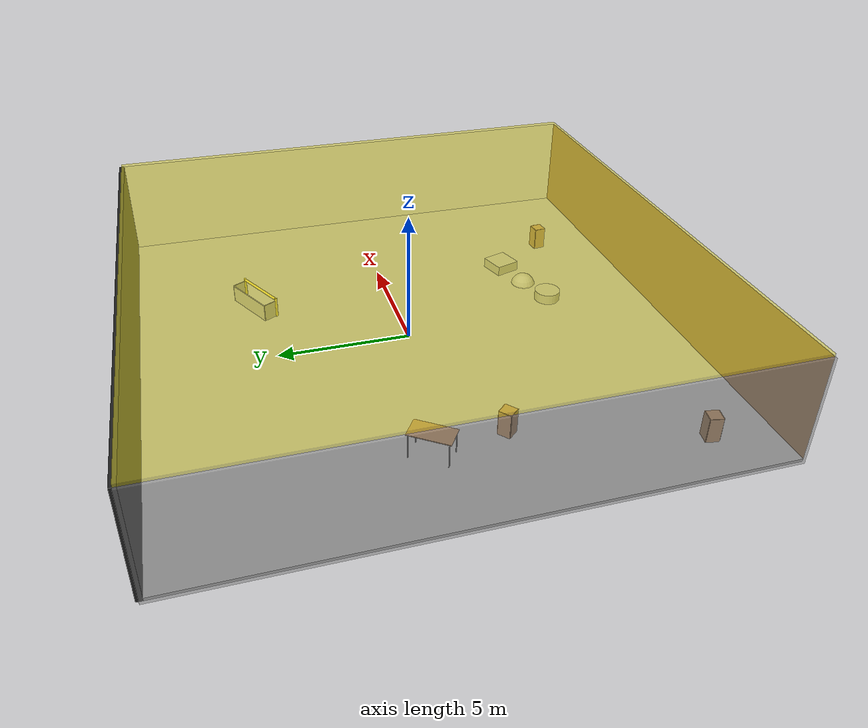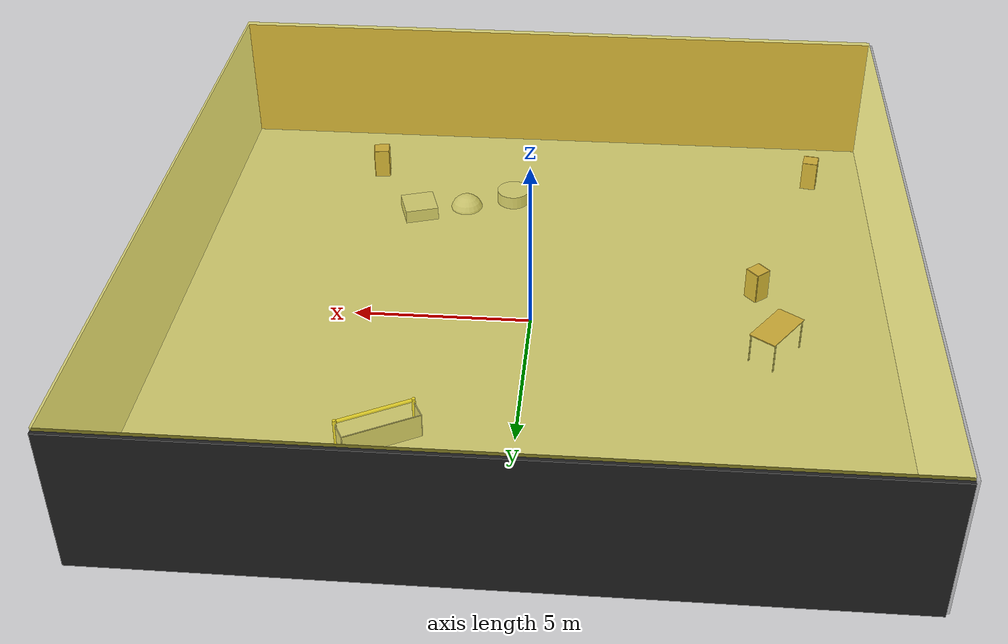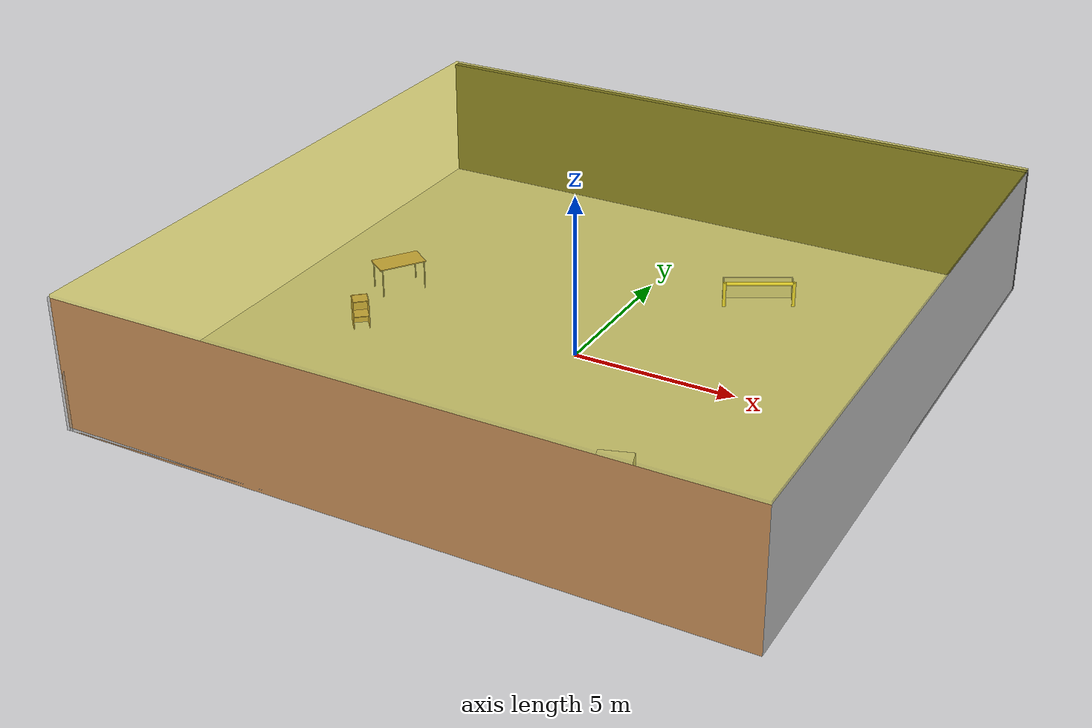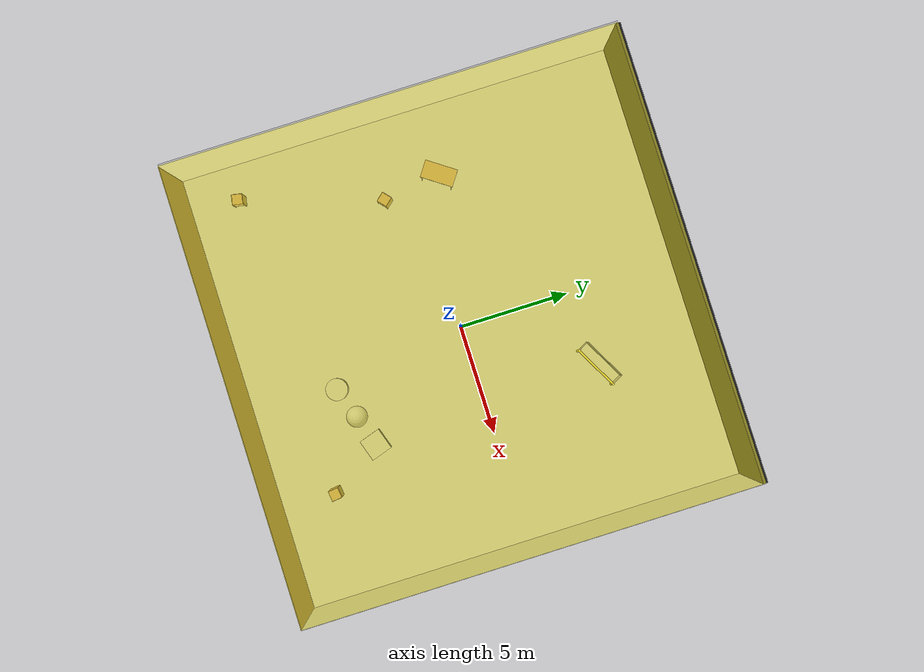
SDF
<sdf version="1.4">
 <world name="default">
  <physics type="ode">
   <max_step_size>0.001</max_step_size>
   <real_time_factor>1</real_time_factor>
   <real_time_update_rate>1000</real_time_update_rate>
   <gravity>0 0 -9.8</gravity>
  </physics>
  <scene><ambient>0.4 0.4 0.4 1</ambient><background>0.7 0.7 0.7 1</background><shadows>1</shadows></scene>
  <model name="Surrounding">
   <static>1</static>
   <link name="Ceiling">
    <collision name="Ceiling_Collision"><geometry><box><size>20 20 0.1</size></box></geometry></collision>
    <visual name="Ceiling_Visual">
     <geometry><box><size>20 20 0.1</size></box></geometry>
     <material>
      <script>
       <uri>file://media/materials/scripts/gazebo.material</uri>
       <name>Gazebo/YellowTransparent</name>
      </script>
     </material>
    </visual>
    <pose>0 0 4.05 0 0 0</pose>
   </link>
   <link name="Wall_South">
    <collision name="Wall_South_Collision">
     <geometry><box><size>20 0 4</size></box></geometry>
     <pose>0 0 2 0 -0 0</pose>
    </collision>
    <visual name="Wall_South_Visual">
     <pose>0 0 2 0 -0 0</pose>
     <geometry><box><size>20 0 4</size></box></geometry>
     <material>
      <script><uri>file://media/materials/scripts/gazebo.material</uri><name>Gazebo/Wood</name></script>
     </material>
    </visual>
    <velocity_decay><linear>0</linear><angular>0</angular></velocity_decay>
    <pose>0 -10 0 0 -0 0</pose>
   </link>
   <link name="Wall_East">
    <collision name="Wall_21_Collision">
     <geometry><box><size>20 0 4</size></box></geometry>
     <pose>0 0 2 0 -0 0</pose>
    </collision>
    <visual name="Wall_21_Visual">
     <pose>0 0 2 0 -0 0</pose>
     <geometry><box><size>20 0 4</size></box></geometry>
     <material>
      <script><uri>file://media/materials/scripts/gazebo.material</uri><name>Gazebo/WhiteGlow</name></script>
     </material>
    </visual>
    <velocity_decay><linear>0</linear><angular>0</angular></velocity_decay>
    <pose>10 0 0 0 -0 1.5708</pose>
   </link>
   <link name="Wall_North">
    <collision name="Wall_22_Collision">
     <geometry><box><size>20 0.2 4</size></box></geometry>
     <pose>0 0 2 0 -0 0</pose>
    </collision>
    <visual name="Wall_22_Visual">
     <pose>0 0 2 0 -0 0</pose>
     <geometry><box><size>20 0.2 4</size></box></geometry>
     <material>
      <script><uri>file://media/materials/scripts/gazebo.material</uri><name>Gazebo/Black</name></script>
     </material>
    </visual>
    <velocity_decay><linear>0</linear><angular>0</angular></velocity_decay>
    <pose>0 10 0 0 -0 0</pose>
   </link>
   <link name="Wall_West">
    <collision name="Wall_23_Collision">
     <geometry><box><size>20 0.2 4</size></box></geometry>
     <pose>0 0 2 0 -0 0</pose>
    </collision>
    <visual name="Wall_23_Visual">
     <pose>0 0 2 0 -0 0</pose>
     <geometry><box><size>20 0.2 4</size></box></geometry>
     <material>
      <script><uri>file://media/materials/scripts/gazebo.material</uri><name>Gazebo/GreyTransparent</name></script>
     </material>
    </visual>
    <velocity_decay><linear>0</linear><angular>0</angular></velocity_decay>
    <pose>-10 0 0 0 0 -1.5708</pose>
   </link>
   <link name="Ground_link">
    <collision name="collision">
     <pose>0 0 .05 0 -0 0</pose>
     <geometry><box><size>20 20 0.1</size></box></geometry>
    </collision>
    <visual name="visual">
     <pose>0 0 .05 0 -0 0</pose>
     <geometry><box><size>20 20 0.1</size></box></geometry>
     <material>
      <script><uri>file://media/materials/scripts/gazebo.material</uri><name>Gazebo/PioneerBody</name></script>
     </material>
    </visual>
   </link>
   <static>1</static>
  </model>
  <spherical_coordinates>
   <surface_model>EARTH_WGS84</surface_model>
   <latitude_deg>0</latitude_deg>
   <longitude_deg>0</longitude_deg>
   <elevation>0</elevation>
   <heading_deg>0</heading_deg>
  </spherical_coordinates>
  <light name="lightball_0" type="diffuse">
   <diffuse>0.8 0.8 0.8 1</diffuse>
   <specular>0.2 0.2 0.2 1</specular>
   <attenuation>
    <range>100</range>
    <constant>0.7</constant>
    <linear>0.01</linear>
    <quadratic>0.001</quadratic>
   </attenuation>
   <direction>-0.5 0.1 -0.9</direction>
   <pose>-4.36279084304 7.32782337698 0.885316435948 0 0 0</pose>
  </light>
  <light name="lightball_1" type="diffuse">
   <diffuse>0.8 0.8 0.8 1</diffuse>
   <specular>0.2 0.2 0.2 1</specular>
   <attenuation>
    <range>100</range>
    <constant>0.7</constant>
    <linear>0.01</linear>
    <quadratic>0.001</quadratic>
   </attenuation>
   <direction>-0.5 0.1 -0.9</direction>
   <pose>1.73523166283 -5.20300146709 1.69076494742 0 0 0</pose>
  </light>
  <light name="lightball_2" type="diffuse">
   <diffuse>0.8 0.8 0.8 1</diffuse>
   <specular>0.2 0.2 0.2 1</specular>
   <attenuation>
    <range>100</range>
    <constant>0.7</constant>
    <linear>0.01</linear>
    <quadratic>0.001</quadratic>
   </attenuation>
   <direction>-0.5 0.1 -0.9</direction>
   <pose>-3.3631409949 3.53610983948 2.59024983918 0 0 0</pose>
  </light>
  <light name="lightball_3" type="diffuse">
   <diffuse>0.8 0.8 0.8 1</diffuse>
   <specular>0.2 0.2 0.2 1</specular>
   <attenuation>
    <range>100</range>
    <constant>0.7</constant>
    <linear>0.01</linear>
    <quadratic>0.001</quadratic>
   </attenuation>
   <direction>-0.5 0.1 -0.9</direction>
   <pose>-9.26300946476 -9.62945491124 1.6823882032 0 0 0</pose>
  </light>
  <light name="lightball_4" type="diffuse">
   <diffuse>0.8 0.8 0.8 1</diffuse>
   <specular>0.2 0.2 0.2 1</specular>
   <attenuation>
    <range>100</range>
    <constant>0.7</constant>
    <linear>0.01</linear>
    <quadratic>0.001</quadratic>
   </attenuation>
   <direction>-0.5 0.1 -0.9</direction>
   <pose>7.20214449392 5.58883188606 0.531275931045 0 0 0</pose>
  </light>
  <light name="lightball_5" type="diffuse">
   <diffuse>0.8 0.8 0.8 1</diffuse>
   <specular>0.2 0.2 0.2 1</specular>
   <attenuation>
    <range>100</range>
    <constant>0.7</constant>
    <linear>0.01</linear>
    <quadratic>0.001</quadratic>
   </attenuation>
   <direction>-0.5 0.1 -0.9</direction>
   <pose>0.0064316303023 0.357878624305 2.81359888539 0 0 0</pose>
  </light>
  <light name="lightball_6" type="diffuse">
   <diffuse>0.8 0.8 0.8 1</diffuse>
   <specular>0.2 0.2 0.2 1</specular>
   <attenuation>
    <range>100</range>
    <constant>0.7</constant>
    <linear>0.01</linear>
    <quadratic>0.001</quadratic>
   </attenuation>
   <direction>-0.5 0.1 -0.9</direction>
   <pose>5.49160529482 8.96758783651 1.79005339318 0 0 0</pose>
  </light>
  <light name="lightball_7" type="diffuse">
   <diffuse>0.8 0.8 0.8 1</diffuse>
   <specular>0.2 0.2 0.2 1</specular>
   <attenuation>
    <range>100</range>
    <constant>0.7</constant>
    <linear>0.01</linear>
    <quadratic>0.001</quadratic>
   </attenuation>
   <direction>-0.5 0.1 -0.9</direction>
   <pose>7.24992387677 1.43052684919 2.29700778481 0 0 0</pose>
  </light>
  <light name="lightball_8" type="diffuse">
   <diffuse>0.8 0.8 0.8 1</diffuse>
   <specular>0.2 0.2 0.2 1</specular>
   <attenuation>
    <range>100</range>
    <constant>0.7</constant>
    <linear>0.01</linear>
    <quadratic>0.001</quadratic>
   </attenuation>
   <direction>-0.5 0.1 -0.9</direction>
   <pose>4.97121421127 1.95738112549 1.4297699138 0 0 0</pose>
  </light>
  <light name="lightball_9" type="diffuse">
   <diffuse>0.8 0.8 0.8 1</diffuse>
   <specular>0.2 0.2 0.2 1</specular>
   <attenuation>
    <range>100</range>
    <constant>0.7</constant>
    <linear>0.01</linear>
    <quadratic>0.001</quadratic>
   </attenuation>
   <direction>-0.5 0.1 -0.9</direction>
   <pose>-7.03373809941 6.070305935 0.711220512977 0 0 0</pose>
  </light>
  <include><uri>model://cabinet</uri><pose>-8.32106119884 -7.75645194099 0 0 0 2.96370169056</pose></include>
  <include><uri>model://cabinet</uri><pose>-6.36834769871 -1.54883235922 0 0 0 2.2841409102</pose></include>
  <include><uri>model://table</uri><pose>-6.74146108024 1.10161197603 0 0 0 0.960047452126</pose></include>
  <include>
   <uri>model://textured_shapes</uri>
   <pose>2.44292165818 -5.65217398143 0 0 0 1.8828491523</pose>
  </include>
  <include><uri>model://cabinet</uri><pose>5.38940214894 -7.49366621099 0 0 0 1.68535268792</pose></include>
  <include>
   <uri>model://robocup_3Dsim_goal</uri>
   <pose>3.53531372155 5.15597901065 0 0 0 2.05942315631</pose>
  </include>
 </world>
</sdf>

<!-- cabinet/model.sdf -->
<sdf version="1.5">
  <model name="cabinet">
    <static>true</static>
    <link name="cabinet_bottom_plate">
      <inertial>
        <pose>0 0 -1 0 0 0</pose>
        <inertia>
          <ixx>2.050000</ixx>
          <ixy>0</ixy>
          <ixz>0</ixz>
          <iyy>2.050000</iyy>
          <iyz>0</iyz>
          <izz>2.050000</izz>
        </inertia>
        <mass>25.000000</mass>
      </inertial>
      <collision name="cabinet_bottom_plate_geom">
        <pose>0 0 0.010000 0 0 0</pose>
        <geometry>
          <box>
            <size>0.450000 0.450000 0.020000</size>
          </box>
        </geometry>
      </collision>
      <visual name="cabinet_bottom_plate_geom_visual">
        <pose>0 0 0.010000 0 0 0</pose>
        <geometry>
          <box>
            <size>0.450000 0.450000 0.020000</size>
          </box>
        </geometry>
        <material>
          <script>
            <uri>model://media/materials/scripts/gazebo.material</uri>
            <name>Gazebo/Wood</name>
          </script>
        </material>
      </visual>
      <collision name="cabinet_bottom_plate_geom_cabinet_back_plate">
        <pose>0.235000 0 0.510000 0 0 0</pose>
        <geometry>
          <box>
            <size>0.020000 0.450000 1.020000</size>
          </box>
        </geometry>
      </collision>
      <visual name="cabinet_bottom_plate_geom_cabinet_back_plate_visual">
        <pose>0.235000 0 0.510000 0 0 0</pose>
        <geometry>
          <box>
            <size>0.020000 0.450000 1.020000</size>
          </box>
        </geometry>
        <material>
          <script>
            <uri>model://media/materials/scripts/gazebo.material</uri>
            <name>Gazebo/Wood</name>
          </script>
        </material>
      </visual>
      <collision name="cabinet_bottom_plate_geom_cabinet_left_plate">
        <pose>0 0.235000 0.510000 0 0 0</pose>
        <geometry>
          <box>
            <size>0.450000 0.020000 1.020000</size>
          </box>
        </geometry>
      </collision>
      <visual name="cabinet_bottom_plate_geom_cabinet_left_plate_visual">
        <pose>0 0.235000 0.510000 0 0 0</pose>
        <geometry>
          <box>
            <size>0.450000 0.020000 1.020000</size>
          </box>
        </geometry>
        <material>
          <script>
            <uri>model://media/materials/scripts/gazebo.material</uri>
            <name>Gazebo/Wood</name>
          </script>
        </material>
      </visual>
      <collision name="cabinet_bottom_plate_geom_cabinet_middle_plate">
        <pose>0 0 0.510000 0 0 0</pose>
        <geometry>
          <box>
            <size>0.450000 0.450000 0.020000</size>
          </box>
        </geometry>
      </collision>
      <visual name="cabinet_bottom_plate_geom_cabinet_middle_plate_visual">
        <pose>0 0 0.510000 0 0 0</pose>
        <geometry>
          <box>
            <size>0.450000 0.450000 0.020000</size>
          </box>
        </geometry>
        <material>
          <script>
            <uri>model://media/materials/scripts/gazebo.material</uri>
            <name>Gazebo/Wood</name>
          </script>
        </material>
      </visual>
      <collision name="cabinet_bottom_plate_geom_cabinet_right_plate">
        <pose>0 -0.235000 0.510000 0 0 0</pose>
        <geometry>
          <box>
            <size>0.450000 0.020000 1.020000</size>
          </box>
        </geometry>
      </collision>
      <visual name="cabinet_bottom_plate_geom_cabinet_right_plate_visual">
        <pose>0 -0.235000 0.510000 0 0 0</pose>
        <geometry>
          <box>
            <size>0.450000 0.020000 1.020000</size>
          </box>
        </geometry>
        <material>
          <script>
            <uri>model://media/materials/scripts/gazebo.material</uri>
            <name>Gazebo/Wood</name>
          </script>
        </material>
      </visual>
      <collision name="cabinet_bottom_plate_geom_cabinet_top_plate">
        <pose>0 0 1.010000 0 0 0</pose>
        <geometry>
          <box>
            <size>0.450000 0.450000 0.020000</size>
          </box>
        </geometry>
      </collision>
      <visual name="cabinet_bottom_plate_geom_cabinet_top_plate_visual">
        <pose>0 0 1.010000 0 0 0</pose>
        <geometry>
          <box>
            <size>0.450000 0.450000 0.020000</size>
          </box>
        </geometry>
        <material>
          <script>
            <uri>model://media/materials/scripts/gazebo.material</uri>
            <name>Gazebo/Wood</name>
          </script>
        </material>
      </visual>
    </link>
  </model>
</sdf>

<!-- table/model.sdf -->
<sdf version="1.5">
  <model name="table">
    <static>true</static>
    <link name="link">
      <collision name="surface">
        <pose>0 0 1.0 0 0 0</pose>
        <geometry>
          <box>
            <size>1.5 0.8 0.03</size>
          </box>
        </geometry>
        <surface>
          <friction>
            <ode>
              <mu>0.6</mu>
              <mu2>0.6</mu2>
            </ode>
          </friction>
        </surface>
      </collision>
      <visual name="visual1">
        <pose>0 0 1.0 0 0 0</pose>
        <geometry>
          <box>
            <size>1.5 0.8 0.03</size>
          </box>
        </geometry>
        <material>
          <script>
            <uri>model://media/materials/scripts/gazebo.material</uri>
            <name>Gazebo/Wood</name>
          </script>
        </material>
      </visual>
      <collision name="front_left_leg">
        <pose>0.68 0.38 0.5 0 0 0</pose>
        <geometry>
          <cylinder>
            <radius>0.02</radius>
            <length>1.0</length>
          </cylinder>
        </geometry>
      </collision>
      <visual name="front_left_leg">
        <pose>0.68 0.38 0.5 0 0 0</pose>
        <geometry>
          <cylinder>
            <radius>0.02</radius>
            <length>1.0</length>
          </cylinder>
        </geometry>
        <material>
          <script>
            <uri>model://media/materials/scripts/gazebo.material</uri>
            <name>Gazebo/Grey</name>
          </script>
        </material>
      </visual>
      <collision name="front_right_leg">
        <pose>0.68 -0.38 0.5 0 0 0</pose>
        <geometry>
          <cylinder>
            <radius>0.02</radius>
            <length>1.0</length>
          </cylinder>
        </geometry>
      </collision>
      <visual name="front_right_leg">
        <pose>0.68 -0.38 0.5 0 0 0</pose>
        <geometry>
          <cylinder>
            <radius>0.02</radius>
            <length>1.0</length>
          </cylinder>
        </geometry>
        <material>
          <script>
            <uri>model://media/materials/scripts/gazebo.material</uri>
            <name>Gazebo/Grey</name>
          </script>
        </material>
      </visual>
      <collision name="back_right_leg">
        <pose>-0.68 -0.38 0.5 0 0 0</pose>
        <geometry>
          <cylinder>
            <radius>0.02</radius>
            <length>1.0</length>
          </cylinder>
        </geometry>
      </collision>
      <visual name="back_right_leg">
        <pose>-0.68 -0.38 0.5 0 0 0</pose>
        <geometry>
          <cylinder>
            <radius>0.02</radius>
            <length>1.0</length>
          </cylinder>
        </geometry>
        <material>
          <script>
            <uri>model://media/materials/scripts/gazebo.material</uri>
            <name>Gazebo/Grey</name>
          </script>
        </material>
      </visual>
      <collision name="back_left_leg">
        <pose>-0.68 0.38 0.5 0 0 0</pose>
        <geometry>
          <cylinder>
            <radius>0.02</radius>
            <length>1.0</length>
          </cylinder>
        </geometry>
      </collision>
      <visual name="back_left_leg">
        <pose>-0.68 0.38 0.5 0 0 0</pose>
        <geometry>
          <cylinder>
            <radius>0.02</radius>
            <length>1.0</length>
          </cylinder>
        </geometry>
        <material>
          <script>
            <uri>model://media/materials/scripts/gazebo.material</uri>
            <name>Gazebo/Grey</name>
          </script>
        </material>
      </visual>
    </link>
  </model>
</sdf>

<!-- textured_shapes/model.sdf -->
<sdf version="1.6">
  <model name="textured_shapes">
    <pose>0 0 0.5 0 0 0</pose>
    <link name="box">
      <pose>0 -1.5 0 0 0 0</pose>
      <collision name="collision">
        <geometry>
          <box>
            <size>1 1 1</size>
          </box>
        </geometry>
      </collision>
      <visual name="visual">
        <geometry>
          <box>
            <size>1 1 1</size>
          </box>
        </geometry>
        <material>
          <script>
            <uri>model://../model_source/models/textured_shapes/materials/scripts</uri>
            <uri>model://../model_source/models/textured_shapes/materials/textures</uri>
            <name>TexturedShape/Squares</name>
          </script>
        </material>
      </visual>
    </link>
    <link name="sphere">
      <collision name="collision">
        <geometry>
          <sphere>
            <radius>0.5</radius>
          </sphere>
        </geometry>
      </collision>
      <visual name="visual">
        <geometry>
          <sphere>
            <radius>0.5</radius>
          </sphere>
        </geometry>
        <material>
          <script>
            <uri>model://../model_source/models/textured_shapes/materials/scripts</uri>
            <uri>model://../model_source/models/textured_shapes/materials/textures</uri>
            <name>TexturedShape/Squares</name>
          </script>
        </material>
      </visual>
    </link>
    <link name="cylinder">
      <pose>0 1.5 0 0 0 0</pose>
      <collision name="collision">
        <geometry>
          <cylinder>
            <radius>0.5</radius>
            <length>1</length>
          </cylinder>
        </geometry>
      </collision>
      <visual name="visual">
        <geometry>
          <cylinder>
            <radius>0.5</radius>
            <length>1</length>
          </cylinder>
        </geometry>
        <material>
          <script>
            <uri>model://../model_source/models/textured_shapes/materials/scripts</uri>
            <uri>model://../model_source/models/textured_shapes/materials/textures</uri>
            <name>TexturedShape/Squares</name>
          </script>
        </material>
      </visual>
    </link>
  </model>
</sdf>

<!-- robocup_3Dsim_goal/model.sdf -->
<sdf version="1.5">
  <model name="robocup_3d_goal">
    <static>true</static>
    <link name="left_post">
      <pose>0 1.05 0.45 0 0 0</pose>
      <collision name="collision">
        <geometry>
          <cylinder>
            <radius>0.05</radius>
            <length>0.9</length>
          </cylinder>
        </geometry>
      </collision>
      <visual name="visual">
        <geometry>
          <cylinder>
            <radius>0.05</radius>
            <length>0.9</length>
          </cylinder>
        </geometry>
        <material>
          <script>
            <uri>file://media/materials/scripts/gazebo.material</uri>
            <name>Gazebo/ZincYellow</name>
          </script>
        </material>
      </visual>
    </link>
    <link name="left_support_horiz_lower">
      <pose>0.30 1.05 0.01 0 0 0</pose>
      <collision name="collision">
        <geometry>
          <box>
            <size>0.50 0.02 0.02</size>
          </box>
        </geometry>
      </collision>
      <visual name="visual">
        <geometry>
          <box>
            <size>0.50 0.02 0.02</size>
          </box>
        </geometry>
        <material>
          <script>
            <uri>file://media/materials/scripts/gazebo.material</uri>
            <name>Gazebo/White</name>
          </script>
        </material>
      </visual>
    </link>
    <link name="left_support_horiz_upper">
      <pose>0.30 1.05 0.79 0 0 0</pose>
      <collision name="collision">
        <geometry>
          <box>
            <size>0.50 0.02 0.02</size>
          </box>
        </geometry>
      </collision>
      <visual name="visual">
        <geometry>
          <box>
            <size>0.50 0.02 0.02</size>
          </box>
        </geometry>
        <material>
          <script>
            <uri>file://media/materials/scripts/gazebo.material</uri>
            <name>Gazebo/White</name>
          </script>
        </material>
      </visual>
    </link>
    <link name="left_support_vertical">
      <pose>0.56 1.05 0.4 0 1.5708 0</pose>
      <collision name="collision">
        <geometry>
          <box>
            <size>0.80 0.02 0.02</size>
          </box>
        </geometry>
      </collision>
      <visual name="visual">
        <geometry>
          <box>
            <size>0.80 0.02 0.02</size>
          </box>
        </geometry>
        <material>
          <script>
            <uri>file://media/materials/scripts/gazebo.material</uri>
            <name>Gazebo/White</name>
          </script>
        </material>
      </visual>
    </link>
    <link name="right_support_horiz_lower">
      <pose>0.30 -1.05 0.01 0 0 0</pose>
      <collision name="collision">
        <geometry>
          <box>
            <size>0.50 0.02 0.02</size>
          </box>
        </geometry>
      </collision>
      <visual name="visual">
        <geometry>
          <box>
            <size>0.50 0.02 0.02</size>
          </box>
        </geometry>
        <material>
          <script>
            <uri>file://media/materials/scripts/gazebo.material</uri>
            <name>Gazebo/White</name>
          </script>
        </material>
      </visual>
    </link>
    <link name="right_support_horiz_upper">
      <pose>0.30 -1.05 0.79 0 0 0</pose>
      <collision name="collision">
        <geometry>
          <box>
            <size>0.50 0.02 0.02</size>
          </box>
        </geometry>
      </collision>
      <visual name="visual">
        <geometry>
          <box>
            <size>0.50 0.02 0.02</size>
          </box>
        </geometry>
        <material>
          <script>
            <uri>file://media/materials/scripts/gazebo.material</uri>
            <name>Gazebo/White</name>
          </script>
        </material>
      </visual>
    </link>
    <link name="right_support_vertical">
      <pose>0.56 -1.05 0.4 0 1.5708 0</pose>
      <collision name="collision">
        <geometry>
          <box>
            <size>0.80 0.02 0.02</size>
          </box>
        </geometry>
      </collision>
      <visual name="visual">
        <geometry>
          <box>
            <size>0.80 0.02 0.02</size>
          </box>
        </geometry>
        <material>
          <script>
            <uri>file://media/materials/scripts/gazebo.material</uri>
            <name>Gazebo/White</name>
          </script>
        </material>
      </visual>
    </link>
    <link name="center_support_horiz_lower">
      <pose>0.56 0 0.01 0 1.5708 0</pose>
      <collision name="collision">
        <geometry>
          <box>
            <size>0.02 2.08 0.02</size>
          </box>
        </geometry>
      </collision>
      <visual name="visual">
        <geometry>
          <box>
            <size>0.02 2.08 0.02</size>
          </box>
        </geometry>
        <material>
          <script>
            <uri>file://media/materials/scripts/gazebo.material</uri>
            <name>Gazebo/White</name>
          </script>
        </material>
      </visual>
    </link>
    <link name="center_support_horiz_upper">
      <pose>0.56 0 0.79 0 1.5708 0</pose>
      <collision name="collision">
        <geometry>
          <box>
            <size>0.02 2.08 0.02</size>
          </box>
        </geometry>
      </collision>
      <visual name="visual">
        <geometry>
          <box>
            <size>0.02 2.08 0.02</size>
          </box>
        </geometry>
        <material>
          <script>
            <uri>file://media/materials/scripts/gazebo.material</uri>
            <name>Gazebo/White</name>
          </script>
        </material>
      </visual>
    </link>
    <link name="right_post">
      <pose>0 -1.05 0.45 0 0 0</pose>
      <collision name="collision">
        <geometry>
          <cylinder>
            <radius>0.05</radius>
            <length>0.9</length>
          </cylinder>
        </geometry>
      </collision>
      <visual name="visual">
        <geometry>
          <cylinder>
            <radius>0.05</radius>
            <length>0.9</length>
          </cylinder>
        </geometry>
        <material>
          <script>
            <uri>file://media/materials/scripts/gazebo.material</uri>
            <name>Gazebo/ZincYellow</name>
          </script>
        </material>
      </visual>
    </link>
    <link name="crossbar">
      <pose>0 0 0.85 1.57 1.57 0</pose>
      <collision name="collision">
        <geometry>
          <cylinder>
            <radius>0.05</radius>
            <length>2.0</length>
          </cylinder>
        </geometry>
      </collision>
      <visual name="visual">
        <geometry>
          <cylinder>
            <radius>0.05</radius>
            <length>2.0</length>
          </cylinder>
        </geometry>
        <material>
          <script>
            <uri>file://media/materials/scripts/gazebo.material</uri>
            <name>Gazebo/ZincYellow</name>
          </script>
        </material>
      </visual>
    </link>
    <link name="center_net">
      <pose>0.56 0 0.40 0 0 0</pose>
      <collision name="collision">
        <geometry>
          <box>
            <size>0.01 2.1 0.80</size>
          </box>
        </geometry>
      </collision>
      <visual name="visual">
        <geometry>
          <box>
            <size>0.01 2.1 0.80</size>
          </box>
        </geometry>
        <material>
          <script>
            <uri>model://../model_source/models/robocup09_spl_field/materials/scripts/</uri>
            <uri>model://../model_source/models/robocup09_spl_field/materials/textures/</uri>
            <name>RoboCup/Net</name>
          </script>
        </material>
      </visual>
    </link>
    <link name="left_net">
      <pose>0.30 1.05 0.40 0 0 0</pose>
      <collision name="collision">
        <geometry>
          <box>
            <size>0.50 0.01 0.76</size>
          </box>
        </geometry>
      </collision>
      <visual name="visual">
        <geometry>
          <box>
            <size>0.50 0.01 0.76</size>
          </box>
        </geometry>
        <material>
          <script>
            <uri>model://../model_source/models/robocup09_spl_field/materials/scripts/</uri>
            <uri>model://../model_source/models/robocup09_spl_field/materials/textures/</uri>
            <name>RoboCup/Net</name>
          </script>
        </material>
      </visual>
    </link>
    <link name="right_net">
      <pose>0.30 -1.05 0.40 0 0 0</pose>
      <collision name="collision">
        <geometry>
          <box>
            <size>0.50 0.01 0.76</size>
          </box>
        </geometry>
      </collision>
      <visual name="visual">
        <geometry>
          <box>
            <size>0.50 0.01 0.76</size>
          </box>
        </geometry>
        <material>
          <script>
            <uri>model://../model_source/models/robocup09_spl_field/materials/scripts/</uri>
            <uri>model://../model_source/models/robocup09_spl_field/materials/textures/</uri>
            <name>RoboCup/Net</name>
          </script>
        </material>
      </visual>
    </link>
  </model>
</sdf>
